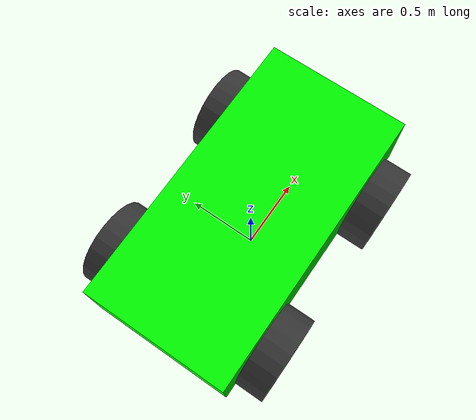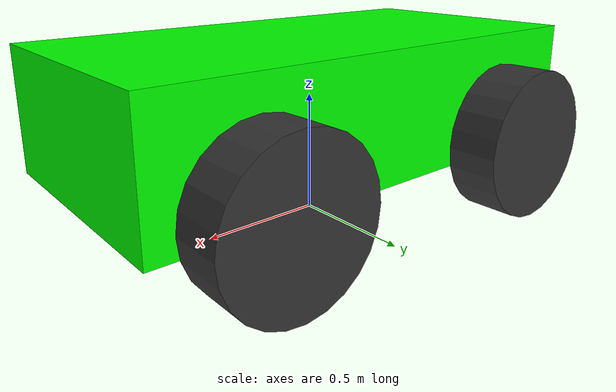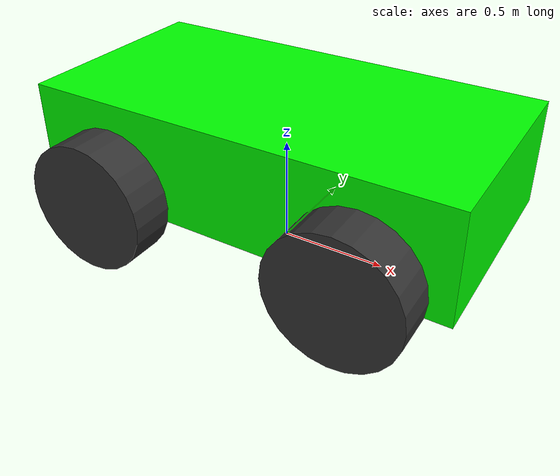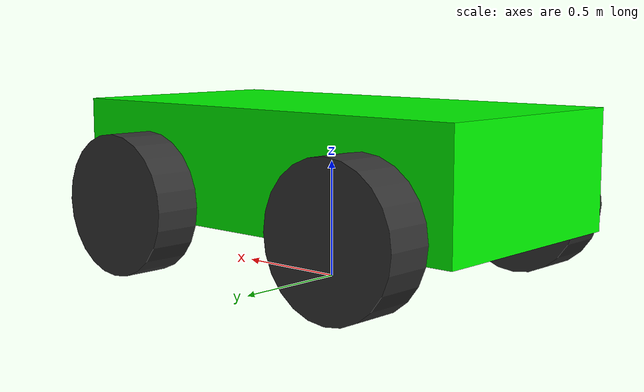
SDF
<?xml version="1.0" ?>
<sdf version="1.8">
    <model name='smart_car'>
      <pose>0 0 0.325 0 -0 0</pose>

      <link name='chassis'>
        <pose>0 0 0.175 0 0 0</pose>
        <inertial>
          <mass>10.0</mass>
          <inertia>
            <ixx>1.0</ixx> <iyy>1.0</iyy> <izz>1.0</izz>
          </inertia>
        </inertial>
        <visual name='visual'>
          <geometry>
            <box>
              <size>2.0 1.0 0.5</size>
            </box>
          </geometry>
          <material>
            <ambient>0.0 1.0 0.0 1</ambient> <!-- Green for DiffDrive -->
            <diffuse>0.0 1.0 0.0 1</diffuse>
          </material>
        </visual>
        <collision name='collision'>
          <geometry>
            <box>
              <size>2.0 1.0 0.5</size>
            </box>
          </geometry>
        </collision>
      </link>

      <!-- Front Left Wheel -->
      <link name='front_left_wheel'>
        <pose>0.6 0.6 0.0 -1.5707 0 0</pose>
        <inertial>
          <mass>2.0</mass>
          <inertia>
            <ixx>0.1</ixx> <iyy>0.1</iyy> <izz>0.1</izz>
          </inertia>
        </inertial>
        <visual name='visual'>
          <geometry>
            <cylinder> <radius>0.3</radius> <length>0.2</length> </cylinder>
          </geometry>
          <material> <ambient>0.2 0.2 0.2 1</ambient> </material>
        </visual>
        <collision name='collision'>
          <geometry>
            <cylinder> <radius>0.3</radius> <length>0.2</length> </cylinder>
          </geometry>
          <surface>
            <friction>
              <ode> <mu>1.0</mu> <mu2>1.0</mu2> </ode>
            </friction>
          </surface>
        </collision>
      </link>

      <joint name='front_left_wheel_joint' type='revolute'>
        <parent>chassis</parent>
        <child>front_left_wheel</child>
        <axis>
          <xyz>0 0 1</xyz>
          <limit> <effort>1000</effort> <velocity>20</velocity> </limit>
        </axis>
      </joint>

      <!-- Front Right Wheel -->
      <link name='front_right_wheel'>
        <pose>0.6 -0.6 0.0 -1.5707 0 0</pose>
        <inertial>
          <mass>2.0</mass>
          <inertia>
            <ixx>0.1</ixx> <iyy>0.1</iyy> <izz>0.1</izz>
          </inertia>
        </inertial>
        <visual name='visual'>
          <geometry>
            <cylinder> <radius>0.3</radius> <length>0.2</length> </cylinder>
          </geometry>
          <material> <ambient>0.2 0.2 0.2 1</ambient> </material>
        </visual>
        <collision name='collision'>
          <geometry>
            <cylinder> <radius>0.3</radius> <length>0.2</length> </cylinder>
          </geometry>
          <surface>
            <friction>
              <ode> <mu>1.0</mu> <mu2>1.0</mu2> </ode>
            </friction>
          </surface>
        </collision>
      </link>

      <joint name='front_right_wheel_joint' type='revolute'>
        <parent>chassis</parent>
        <child>front_right_wheel</child>
        <axis>
          <xyz>0 0 1</xyz>
          <limit> <effort>1000</effort> <velocity>20</velocity> </limit>
        </axis>
      </joint>

      <!-- Rear Left Wheel -->
      <link name='rear_left_wheel'>
        <pose>-0.6 0.6 0.0 -1.5707 0 0</pose>
        <inertial>
          <mass>2.0</mass>
          <inertia>
            <ixx>0.1</ixx> <iyy>0.1</iyy> <izz>0.1</izz>
          </inertia>
        </inertial>
        <visual name='visual'>
          <geometry>
            <cylinder> <radius>0.3</radius> <length>0.2</length> </cylinder>
          </geometry>
          <material> <ambient>0.2 0.2 0.2 1</ambient> </material>
        </visual>
        <collision name='collision'>
          <geometry>
            <cylinder> <radius>0.3</radius> <length>0.2</length> </cylinder>
          </geometry>
          <surface>
            <friction>
              <ode> <mu>1.0</mu> <mu2>1.0</mu2> </ode>
            </friction>
          </surface>
        </collision>
      </link>

      <joint name='rear_left_wheel_joint' type='revolute'>
        <parent>chassis</parent>
        <child>rear_left_wheel</child>
        <axis>
          <xyz>0 0 1</xyz>
          <limit> <effort>1000</effort> <velocity>20</velocity> </limit>
        </axis>
      </joint>

      <!-- Rear Right Wheel -->
      <link name='rear_right_wheel'>
        <pose>-0.6 -0.6 0.0 -1.5707 0 0</pose>
        <inertial>
          <mass>2.0</mass>
          <inertia>
            <ixx>0.1</ixx> <iyy>0.1</iyy> <izz>0.1</izz>
          </inertia>
        </inertial>
        <visual name='visual'>
          <geometry>
            <cylinder> <radius>0.3</radius> <length>0.2</length> </cylinder>
          </geometry>
          <material> <ambient>0.2 0.2 0.2 1</ambient> </material>
        </visual>
        <collision name='collision'>
          <geometry>
            <cylinder> <radius>0.3</radius> <length>0.2</length> </cylinder>
          </geometry>
          <surface>
            <friction>
              <ode> <mu>1.0</mu> <mu2>1.0</mu2> </ode>
            </friction>
          </surface>
        </collision>
      </link>

      <joint name='rear_right_wheel_joint' type='revolute'>
        <parent>chassis</parent>
        <child>rear_right_wheel</child>
        <axis>
          <xyz>0 0 1</xyz>
          <limit> <effort>1000</effort> <velocity>20</velocity> </limit>
        </axis>
      </joint>

      <!-- Diff Drive Plugin -->
      <plugin
        filename="gz-sim-diff-drive-system"
        name="gz::sim::systems::DiffDrive">

        <!-- Left Wheels -->
        <left_joint>front_left_wheel_joint</left_joint>
        <left_joint>rear_left_wheel_joint</left_joint>

        <!-- Right Wheels -->
        <right_joint>front_right_wheel_joint</right_joint>
        <right_joint>rear_right_wheel_joint</right_joint>

        <wheel_separation>1.2</wheel_separation>
        <wheel_radius>0.3</wheel_radius>

        <max_linear_acceleration>5</max_linear_acceleration>
        <min_linear_acceleration>-5</min_linear_acceleration>
        <max_angular_acceleration>4</max_angular_acceleration>
        <min_angular_acceleration>-4</min_angular_acceleration>
        <max_linear_velocity>5.0</max_linear_velocity>
        <min_linear_velocity>-5.0</min_linear_velocity>
        <max_angular_velocity>4.0</max_angular_velocity>
        <min_angular_velocity>-4.0</min_angular_velocity>

        <topic>cmd_vel</topic>
        <odom_topic>odometry</odom_topic>
        <frame_id>odom</frame_id>
        <child_frame_id>chassis</child_frame_id>
      </plugin>

    </model>
</sdf>
